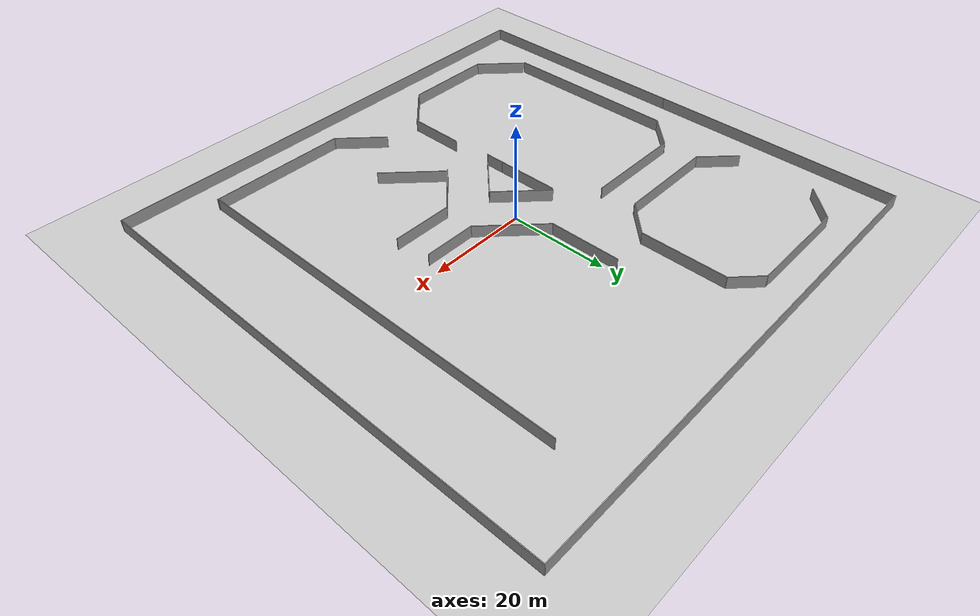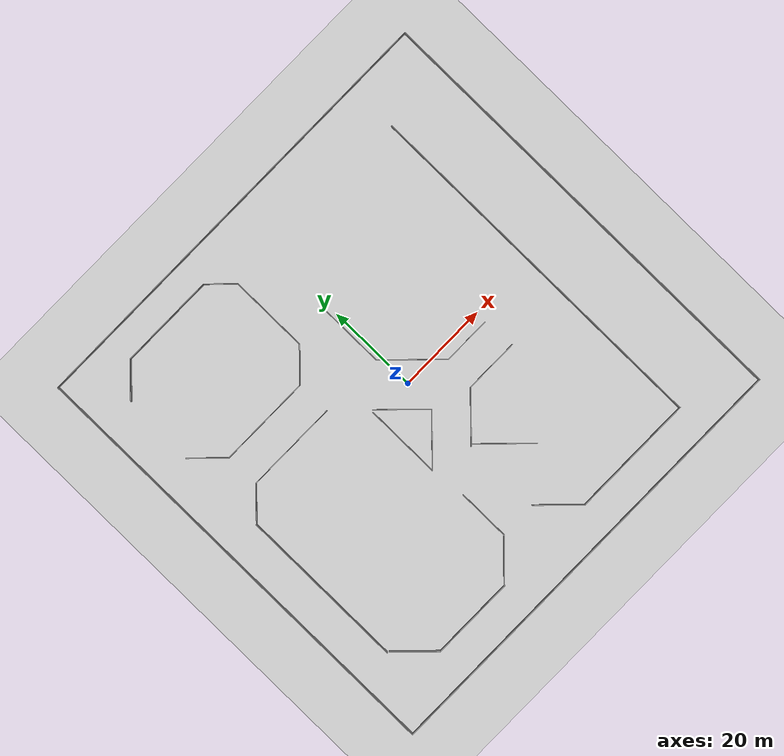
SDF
<sdf version="1.6">
 <world name="default">
  <light name="sun" type="directional">
   <pose>0 0 1000 0 -0 0</pose>
   <diffuse>0.8 0.8 0.8 1</diffuse>
   <specular>0.2 0.2 0.2 1</specular>
   <attenuation>
    <range>1000</range>
    <constant>0.9</constant>
    <linear>0.01</linear>
    <quadratic>0.001</quadratic>
   </attenuation>
   <direction>-0.5 0.1 -0.9</direction>
  </light>
  <model name="ground_plane">
   <static>1</static>
   <link name="link">
    <collision name="collision">
     <geometry><plane><normal>0 0 1</normal><size>100 100</size></plane></geometry>
     <surface><friction><ode><mu>100</mu><mu2>50</mu2></ode></friction></surface>
    </collision>
    <visual name="visual">
     <cast_shadows>0</cast_shadows>
     <geometry><plane><normal>0 0 1</normal><size>100 100</size></plane></geometry>
     <material>
      <ambient>1 1 1 1</ambient>
      <diffuse>0.8 0.8 0.8 1</diffuse>
      <specular>0.01 0.01 0.01 1</specular>
     </material>
    </visual>
   </link>
  </model>
  <gravity>0 0 -9.8</gravity>
  <magnetic_field>6e-06 2.3e-05 -4.2e-05</magnetic_field>
  <atmosphere type="adiabatic"/>
  <physics name="default_physics" default="0" type="ode">
   <max_step_size>0.001</max_step_size>
   <real_time_factor>1</real_time_factor>
   <real_time_update_rate>1000</real_time_update_rate>
  </physics>
  <scene><ambient>0.4 0.4 0.4 1</ambient><background>0.7 0.7 0.7 1</background><shadows>1</shadows></scene>
  <spherical_coordinates>
   <surface_model>EARTH_WGS84</surface_model>
   <latitude_deg>0</latitude_deg>
   <longitude_deg>0</longitude_deg>
   <elevation>0</elevation>
   <heading_deg>0</heading_deg>
  </spherical_coordinates>
  <model name="100x100_room">
   <pose>0.100351 -0.184673 0 0 -0 0</pose>
   <link name="Wall_5">
    <collision name="Wall_5_Collision">
     <geometry><box><size>52 0.15 2.5</size></box></geometry>
     <pose>0 0 1.25 0 -0 0</pose>
    </collision>
    <visual name="Wall_5_Visual">
     <pose>0 0 1.25 0 -0 0</pose>
     <geometry><box><size>52 0.15 2.5</size></box></geometry>
     <material>
      <script><uri>file://media/materials/scripts/gazebo.material</uri><name>Gazebo/Grey</name></script>
      <ambient>1 1 1 1</ambient>
     </material>
     <meta><layer>0</layer></meta>
    </visual>
    <pose>-49.925 24 0 0 -0 1.5708</pose>
   </link>
   <link name="Wall_6">
    <collision name="Wall_6_Collision">
     <geometry><box><size>100 0.15 2.5</size></box></geometry>
     <pose>0 0 1.25 0 -0 0</pose>
    </collision>
    <visual name="Wall_6_Visual">
     <pose>0 0 1.25 0 -0 0</pose>
     <geometry><box><size>100 0.15 2.5</size></box></geometry>
     <material>
      <script><uri>file://media/materials/scripts/gazebo.material</uri><name>Gazebo/Grey</name></script>
      <ambient>1 1 1 1</ambient>
     </material>
     <meta><layer>0</layer></meta>
    </visual>
    <pose>-1e-06 49.925 0 0 -0 0</pose>
   </link>
   <link name="Wall_7">
    <collision name="Wall_7_Collision">
     <geometry><box><size>100 0.15 2.5</size></box></geometry>
     <pose>0 0 1.25 0 -0 0</pose>
    </collision>
    <visual name="Wall_7_Visual">
     <pose>0 0 1.25 0 -0 0</pose>
     <geometry><box><size>100 0.15 2.5</size></box></geometry>
     <material>
      <script><uri>file://media/materials/scripts/gazebo.material</uri><name>Gazebo/Grey</name></script>
      <ambient>1 1 1 1</ambient>
     </material>
     <meta><layer>0</layer></meta>
    </visual>
    <pose>49.925 0 0 0 0 -1.5708</pose>
   </link>
   <link name="Wall_8">
    <collision name="Wall_8_Collision">
     <geometry><box><size>100 0.15 2.5</size></box></geometry>
     <pose>0 0 1.25 0 -0 0</pose>
    </collision>
    <visual name="Wall_8_Visual">
     <pose>0 0 1.25 0 -0 0</pose>
     <geometry><box><size>100 0.15 2.5</size></box></geometry>
     <material>
      <script><uri>file://media/materials/scripts/gazebo.material</uri><name>Gazebo/Grey</name></script>
      <ambient>1 1 1 1</ambient>
     </material>
     <meta><layer>0</layer></meta>
    </visual>
    <pose>-1e-06 -49.925 0 0 -0 3.14159</pose>
   </link>
   <link name="Wall_9">
    <collision name="Wall_9_Collision">
     <geometry><box><size>48.15 0.15 2.5</size></box></geometry>
     <pose>0 0 1.25 0 -0 0</pose>
    </collision>
    <visual name="Wall_9_Visual">
     <pose>0 0 1.25 0 -0 0</pose>
     <geometry><box><size>48.15 0.15 2.5</size></box></geometry>
     <material>
      <script><uri>file://media/materials/scripts/gazebo.material</uri><name>Gazebo/Grey</name></script>
      <ambient>1 1 1 1</ambient>
     </material>
     <meta><layer>0</layer></meta>
    </visual>
    <pose>-49.925 -25.925 0 0 -0 1.5708</pose>
   </link>
   <static>1</static>
  </model>
  <model name="racecar_test">
   <pose>-3.53436 0.374012 0 0 -0 0</pose>
   <link name="Wall_124">
    <collision name="Wall_124_Collision">
     <geometry><box><size>37 0.15 2.5</size></box></geometry>
     <pose>0 0 1.25 0 -0 0</pose>
    </collision>
    <visual name="Wall_124_Visual">
     <pose>0 0 1.25 0 -0 0</pose>
     <geometry><box><size>37 0.15 2.5</size></box></geometry>
     <material>
      <script><uri>file://media/materials/scripts/gazebo.material</uri><name>Gazebo/Grey</name></script>
      <ambient>1 1 1 1</ambient>
     </material>
     <meta><layer>0</layer></meta>
    </visual>
    <pose>-38.082 -16.9077 0 0 -0 1.5708</pose>
   </link>
   <link name="Wall_125">
    <collision name="Wall_125_Collision">
     <geometry><box><size>8.5 0.15 2.5</size></box></geometry>
     <pose>0 0 1.25 0 -0 0</pose>
    </collision>
    <visual name="Wall_125_Visual">
     <pose>0 0 1.25 0 -0 0</pose>
     <geometry><box><size>8.5 0.15 2.5</size></box></geometry>
     <material>
      <script><uri>file://media/materials/scripts/gazebo.material</uri><name>Gazebo/Grey</name></script>
      <ambient>1 1 1 1</ambient>
     </material>
     <meta><layer>0</layer></meta>
    </visual>
    <pose>-35.1298 4.46946 0 0 -0 0.785398</pose>
   </link>
   <link name="Wall_126">
    <collision name="Wall_126_Collision">
     <geometry><box><size>20.5 0.15 2.5</size></box></geometry>
     <pose>0 0 1.25 0 -0 0</pose>
    </collision>
    <visual name="Wall_126_Visual">
     <pose>0 0 1.25 0 -0 0</pose>
     <geometry><box><size>20.5 0.15 2.5</size></box></geometry>
     <material>
      <script><uri>file://media/materials/scripts/gazebo.material</uri><name>Gazebo/Grey</name></script>
      <ambient>1 1 1 1</ambient>
     </material>
     <meta><layer>0</layer></meta>
    </visual>
    <pose>-22.0026 7.42163 0 0 -0 0</pose>
   </link>
   <link name="Wall_128">
    <collision name="Wall_128_Collision">
     <geometry><box><size>8.75 0.15 2.5</size></box></geometry>
     <pose>0 0 1.25 0 -0 0</pose>
    </collision>
    <visual name="Wall_128_Visual">
     <pose>0 0 1.25 0 -0 0</pose>
     <geometry><box><size>8.75 0.15 2.5</size></box></geometry>
     <material>
      <script><uri>file://media/materials/scripts/gazebo.material</uri><name>Gazebo/Grey</name></script>
      <ambient>1 1 1 1</ambient>
     </material>
     <meta><layer>0</layer></meta>
    </visual>
    <pose>-35.357 17.9101 0 0 0 -0.785398</pose>
   </link>
   <link name="Wall_129">
    <collision name="Wall_129_Collision">
     <geometry><box><size>20.5 0.15 2.5</size></box></geometry>
     <pose>0 0 1.25 0 -0 0</pose>
    </collision>
    <visual name="Wall_129_Visual">
     <pose>0 0 1.25 0 -0 0</pose>
     <geometry><box><size>20.5 0.15 2.5</size></box></geometry>
     <material>
      <script><uri>file://media/materials/scripts/gazebo.material</uri><name>Gazebo/Grey</name></script>
      <ambient>1 1 1 1</ambient>
     </material>
     <meta><layer>0</layer></meta>
    </visual>
    <pose>-22.1415 14.8696 0 0 -0 0</pose>
   </link>
   <link name="Wall_130">
    <collision name="Wall_130_Collision">
     <geometry><box><size>8.5 0.15 2.5</size></box></geometry>
     <pose>0 0 1.25 0 -0 0</pose>
    </collision>
    <visual name="Wall_130_Visual">
     <pose>0 0 1.25 0 -0 0</pose>
     <geometry><box><size>8.5 0.15 2.5</size></box></geometry>
     <material>
      <script><uri>file://media/materials/scripts/gazebo.material</uri><name>Gazebo/Grey</name></script>
      <ambient>1 1 1 1</ambient>
     </material>
     <meta><layer>0</layer></meta>
    </visual>
    <pose>-9.01428 17.8217 0 0 -0 0.785398</pose>
   </link>
   <link name="Wall_131">
    <collision name="Wall_131_Collision">
     <geometry><box><size>17.5 0.15 2.5</size></box></geometry>
     <pose>0 0 1.25 0 -0 0</pose>
    </collision>
    <visual name="Wall_131_Visual">
     <pose>0 0 1.25 0 -0 0</pose>
     <geometry><box><size>17.5 0.15 2.5</size></box></geometry>
     <material>
      <script><uri>file://media/materials/scripts/gazebo.material</uri><name>Gazebo/Grey</name></script>
      <ambient>1 1 1 1</ambient>
     </material>
     <meta><layer>0</layer></meta>
    </visual>
    <pose>-6.06211 29.4489 0 0 -0 1.5708</pose>
   </link>
   <link name="Wall_132">
    <collision name="Wall_132_Collision">
     <geometry><box><size>7 0.15 2.5</size></box></geometry>
     <pose>0 0 1.25 0 -0 0</pose>
    </collision>
    <visual name="Wall_132_Visual">
     <pose>0 0 1.25 0 -0 0</pose>
     <geometry><box><size>7 0.15 2.5</size></box></geometry>
     <material>
      <script><uri>file://media/materials/scripts/gazebo.material</uri><name>Gazebo/Grey</name></script>
      <ambient>1 1 1 1</ambient>
     </material>
     <meta><layer>0</layer></meta>
    </visual>
    <pose>-8.48395 40.5457 0 0 -0 2.35619</pose>
   </link>
   <link name="Wall_133">
    <collision name="Wall_133_Collision">
     <geometry><box><size>21.25 0.15 2.5</size></box></geometry>
     <pose>0 0 1.25 0 -0 0</pose>
    </collision>
    <visual name="Wall_133_Visual">
     <pose>0 0 1.25 0 -0 0</pose>
     <geometry><box><size>21.25 0.15 2.5</size></box></geometry>
     <material>
      <script><uri>file://media/materials/scripts/gazebo.material</uri><name>Gazebo/Grey</name></script>
      <ambient>1 1 1 1</ambient>
     </material>
     <meta><layer>0</layer></meta>
    </visual>
    <pose>-21.4558 42.9676 0 0 -0 3.14159</pose>
   </link>
   <link name="Wall_134">
    <collision name="Wall_134_Collision">
     <geometry><box><size>8.75 0.15 2.5</size></box></geometry>
     <pose>0 0 1.25 0 -0 0</pose>
    </collision>
    <visual name="Wall_134_Visual">
     <pose>0 0 1.25 0 -0 0</pose>
     <geometry><box><size>8.75 0.15 2.5</size></box></geometry>
     <material>
      <script><uri>file://media/materials/scripts/gazebo.material</uri><name>Gazebo/Grey</name></script>
      <ambient>1 1 1 1</ambient>
     </material>
     <meta><layer>0</layer></meta>
    </visual>
    <pose>-35.0463 39.927 0 0 0 -2.35619</pose>
   </link>
   <link name="Wall_137">
    <collision name="Wall_137_Collision">
     <geometry><box><size>10.5 0.15 2.5</size></box></geometry>
     <pose>0 0 1.25 0 -0 0</pose>
    </collision>
    <visual name="Wall_137_Visual">
     <pose>0 0 1.25 0 -0 0</pose>
     <geometry><box><size>10.5 0.15 2.5</size></box></geometry>
     <material>
      <script><uri>file://media/materials/scripts/gazebo.material</uri><name>Gazebo/Grey</name></script>
      <ambient>1 1 1 1</ambient>
     </material>
     <meta><layer>0</layer></meta>
    </visual>
    <pose>-34.0374 -39.1315 0 0 0 -0.785398</pose>
   </link>
   <link name="Wall_138">
    <collision name="Wall_138_Collision">
     <geometry><box><size>18.5 0.15 2.5</size></box></geometry>
     <pose>0 0 1.25 0 -0 0</pose>
    </collision>
    <visual name="Wall_138_Visual">
     <pose>0 0 1.25 0 -0 0</pose>
     <geometry><box><size>18.5 0.15 2.5</size></box></geometry>
     <material>
      <script><uri>file://media/materials/scripts/gazebo.material</uri><name>Gazebo/Grey</name></script>
      <ambient>1 1 1 1</ambient>
     </material>
     <meta><layer>0</layer></meta>
    </visual>
    <pose>-21.2031 -42.7908 0 0 -0 0</pose>
   </link>
   <link name="Wall_139">
    <collision name="Wall_139_Collision">
     <geometry><box><size>10.5 0.15 2.5</size></box></geometry>
     <pose>0 0 1.25 0 -0 0</pose>
    </collision>
    <visual name="Wall_139_Visual">
     <pose>0 0 1.25 0 -0 0</pose>
     <geometry><box><size>10.5 0.15 2.5</size></box></geometry>
     <material>
      <script><uri>file://media/materials/scripts/gazebo.material</uri><name>Gazebo/Grey</name></script>
      <ambient>1 1 1 1</ambient>
     </material>
     <meta><layer>0</layer></meta>
    </visual>
    <pose>-8.36886 -39.1315 0 0 -0 0.785398</pose>
   </link>
   <link name="Wall_140">
    <collision name="Wall_140_Collision">
     <geometry><box><size>11.5 0.15 2.5</size></box></geometry>
     <pose>0 0 1.25 0 -0 0</pose>
    </collision>
    <visual name="Wall_140_Visual">
     <pose>0 0 1.25 0 -0 0</pose>
     <geometry><box><size>11.5 0.15 2.5</size></box></geometry>
     <material>
      <script><uri>file://media/materials/scripts/gazebo.material</uri><name>Gazebo/Grey</name></script>
      <ambient>1 1 1 1</ambient>
     </material>
     <meta><layer>0</layer></meta>
    </visual>
    <pose>-4.70958 -29.7973 0 0 -0 1.5708</pose>
   </link>
   <link name="Wall_142">
    <collision name="Wall_142_Collision">
     <geometry><box><size>13 0.15 2.5</size></box></geometry>
     <pose>0 0 1.25 0 -0 0</pose>
    </collision>
    <visual name="Wall_142_Visual">
     <pose>0 0 1.25 0 -0 0</pose>
     <geometry><box><size>13 0.15 2.5</size></box></geometry>
     <material>
      <script><uri>file://media/materials/scripts/gazebo.material</uri><name>Gazebo/Grey</name></script>
      <ambient>1 1 1 1</ambient>
     </material>
     <meta><layer>0</layer></meta>
    </visual>
    <pose>-5.53669 -5.89725 0 0 0 -1.5708</pose>
   </link>
   <link name="Wall_143">
    <collision name="Wall_143_Collision">
     <geometry><box><size>4 0.15 2.5</size></box></geometry>
     <pose>0 0 1.25 0 -0 0</pose>
    </collision>
    <visual name="Wall_143_Visual">
     <pose>0 0 1.25 0 -0 0</pose>
     <geometry><box><size>4 0.15 2.5</size></box></geometry>
     <material>
      <script><uri>file://media/materials/scripts/gazebo.material</uri><name>Gazebo/Grey</name></script>
      <ambient>1 1 1 1</ambient>
     </material>
     <meta><layer>0</layer></meta>
    </visual>
    <pose>-5.53669 -14.2473 0 0 0 -1.5708</pose>
   </link>
   <link name="Wall_145">
    <collision name="Wall_145_Collision">
     <geometry><box><size>14.5 0.15 2.5</size></box></geometry>
     <pose>0 0 1.25 0 -0 0</pose>
    </collision>
    <visual name="Wall_145_Visual">
     <pose>0 0 1.25 0 -0 0</pose>
     <geometry><box><size>14.5 0.15 2.5</size></box></geometry>
     <material>
      <script><uri>file://media/materials/scripts/gazebo.material</uri><name>Gazebo/Grey</name></script>
      <ambient>1 1 1 1</ambient>
     </material>
     <meta><layer>0</layer></meta>
    </visual>
    <pose>2.4633 14.6327 0 0 0 -1.5708</pose>
   </link>
   <link name="Wall_146">
    <collision name="Wall_146_Collision">
     <geometry><box><size>14.75 0.15 2.5</size></box></geometry>
     <pose>0 0 1.25 0 -0 0</pose>
    </collision>
    <visual name="Wall_146_Visual">
     <pose>0 0 1.25 0 -0 0</pose>
     <geometry><box><size>14.75 0.15 2.5</size></box></geometry>
     <material>
      <script><uri>file://media/materials/scripts/gazebo.material</uri><name>Gazebo/Grey</name></script>
      <ambient>1 1 1 1</ambient>
     </material>
     <meta><layer>0</layer></meta>
    </visual>
    <pose>7.62518 2.29587 0 0 0 -0.785398</pose>
   </link>
   <link name="Wall_147">
    <collision name="Wall_147_Collision">
     <geometry><box><size>10.5 0.15 2.5</size></box></geometry>
     <pose>0 0 1.25 0 -0 0</pose>
    </collision>
    <visual name="Wall_147_Visual">
     <pose>0 0 1.25 0 -0 0</pose>
     <geometry><box><size>10.5 0.15 2.5</size></box></geometry>
     <material>
      <script><uri>file://media/materials/scripts/gazebo.material</uri><name>Gazebo/Grey</name></script>
      <ambient>1 1 1 1</ambient>
     </material>
     <meta><layer>0</layer></meta>
    </visual>
    <pose>17.9621 -2.86601 0 0 -0 0</pose>
   </link>
   <link name="Wall_149">
    <collision name="Wall_149_Collision">
     <geometry><box><size>12.5 0.15 2.5</size></box></geometry>
     <pose>0 0 1.25 0 -0 0</pose>
    </collision>
    <visual name="Wall_149_Visual">
     <pose>0 0 1.25 0 -0 0</pose>
     <geometry><box><size>12.5 0.15 2.5</size></box></geometry>
     <material>
      <script><uri>file://media/materials/scripts/gazebo.material</uri><name>Gazebo/Grey</name></script>
      <ambient>1 1 1 1</ambient>
     </material>
     <meta><layer>0</layer></meta>
    </visual>
    <pose>-1.17031 -11.8059 0 0 -0 0.785398</pose>
   </link>
   <link name="Wall_150">
    <collision name="Wall_150_Collision">
     <geometry><box><size>12 0.15 2.5</size></box></geometry>
     <pose>0 0 1.25 0 -0 0</pose>
    </collision>
    <visual name="Wall_150_Visual">
     <pose>0 0 1.25 0 -0 0</pose>
     <geometry><box><size>12 0.15 2.5</size></box></geometry>
     <material>
      <script><uri>file://media/materials/scripts/gazebo.material</uri><name>Gazebo/Grey</name></script>
      <ambient>1 1 1 1</ambient>
     </material>
     <meta><layer>0</layer></meta>
    </visual>
    <pose>-0.993535 -3.24987 0 0 -0 2.35619</pose>
   </link>
   <link name="Wall_152">
    <collision name="Wall_152_Collision">
     <geometry><box><size>12 0.15 2.5</size></box></geometry>
     <pose>0 0 1.25 0 -0 0</pose>
    </collision>
    <visual name="Wall_152_Visual">
     <pose>0 0 1.25 0 -0 0</pose>
     <geometry><box><size>12 0.15 2.5</size></box></geometry>
     <material>
      <script><uri>file://media/materials/scripts/gazebo.material</uri><name>Gazebo/Grey</name></script>
      <ambient>1 1 1 1</ambient>
     </material>
     <meta><layer>0</layer></meta>
    </visual>
    <pose>7.61291 -14.1626 0 0 -0 0.785398</pose>
   </link>
   <link name="Wall_153">
    <collision name="Wall_153_Collision">
     <geometry><box><size>12.25 0.15 2.5</size></box></geometry>
     <pose>0 0 1.25 0 -0 0</pose>
    </collision>
    <visual name="Wall_153_Visual">
     <pose>0 0 1.25 0 -0 0</pose>
     <geometry><box><size>12.25 0.15 2.5</size></box></geometry>
     <material>
      <script><uri>file://media/materials/scripts/gazebo.material</uri><name>Gazebo/Grey</name></script>
      <ambient>1 1 1 1</ambient>
     </material>
     <meta><layer>0</layer></meta>
    </visual>
    <pose>17.8525 -9.97303 0 0 -0 0</pose>
   </link>
   <link name="Wall_155">
    <collision name="Wall_155_Collision">
     <geometry><box><size>10.75 0.15 2.5</size></box></geometry>
     <pose>0 0 1.25 0 -0 0</pose>
    </collision>
    <visual name="Wall_155_Visual">
     <pose>0 0 1.25 0 -0 0</pose>
     <geometry><box><size>10.75 0.15 2.5</size></box></geometry>
     <material>
      <script><uri>file://media/materials/scripts/gazebo.material</uri><name>Gazebo/Grey</name></script>
      <ambient>1 1 1 1</ambient>
     </material>
     <meta><layer>0</layer></meta>
    </visual>
    <pose>7.33097 -39.2199 0 0 0 -0.785398</pose>
   </link>
   <link name="Wall_156">
    <collision name="Wall_156_Collision">
     <geometry><box><size>27.5 0.15 2.5</size></box></geometry>
     <pose>0 0 1.25 0 -0 0</pose>
    </collision>
    <visual name="Wall_156_Visual">
     <pose>0 0 1.25 0 -0 0</pose>
     <geometry><box><size>27.5 0.15 2.5</size></box></geometry>
     <material>
      <script><uri>file://media/materials/scripts/gazebo.material</uri><name>Gazebo/Grey</name></script>
      <ambient>1 1 1 1</ambient>
     </material>
     <meta><layer>0</layer></meta>
    </visual>
    <pose>24.7536 -42.9676 0 0 -0 0</pose>
   </link>
   <link name="Wall_158">
    <collision name="Wall_158_Collision">
     <geometry><box><size>13.25 0.15 2.5</size></box></geometry>
     <pose>0 0 1.25 0 -0 0</pose>
    </collision>
    <visual name="Wall_158_Visual">
     <pose>0 0 1.25 0 -0 0</pose>
     <geometry><box><size>13.25 0.15 2.5</size></box></geometry>
     <material>
      <script><uri>file://media/materials/scripts/gazebo.material</uri><name>Gazebo/Grey</name></script>
      <ambient>1 1 1 1</ambient>
     </material>
     <meta><layer>0</layer></meta>
    </visual>
    <pose>8.53485 -22.8238 0 0 0 -0.785398</pose>
   </link>
   <link name="Wall_166">
    <collision name="Wall_166_Collision">
     <geometry><box><size>81.25 0.15 2.5</size></box></geometry>
     <pose>0 0 1.25 0 -0 0</pose>
    </collision>
    <visual name="Wall_166_Visual">
     <pose>0 0 1.25 0 -0 0</pose>
     <geometry><box><size>81.25 0.15 2.5</size></box></geometry>
     <material>
      <script><uri>file://media/materials/scripts/gazebo.material</uri><name>Gazebo/Grey</name></script>
      <ambient>1 1 1 1</ambient>
     </material>
     <meta><layer>0</layer></meta>
    </visual>
    <pose>38.3033 -2.41225 0 0 0 -1.5708</pose>
   </link>
   <static>1</static>
  </model>
  <plugin name="gazebo_occupancy_map" filename="libgazebo_2Dmap_plugin.so">
   <map_topic>groundtruth/map</map_topic>
   <map_resolution>0.5</map_resolution>
   <map_height>0.01</map_height>
  </plugin>
 </world>
</sdf>
